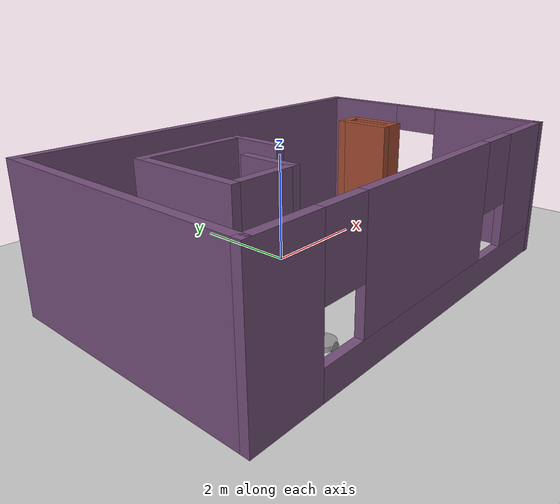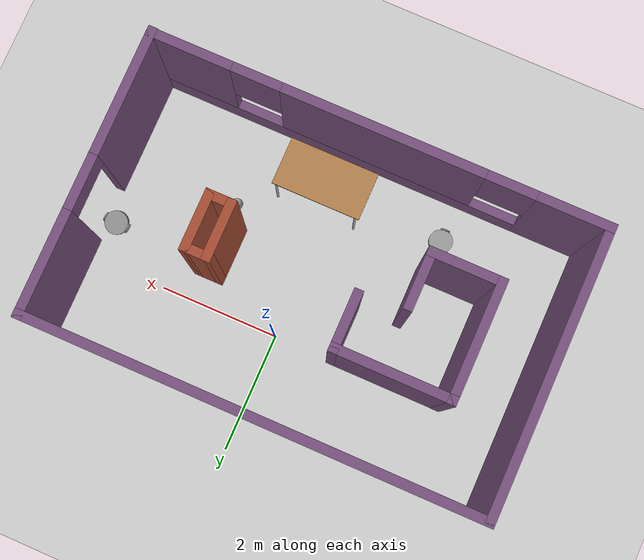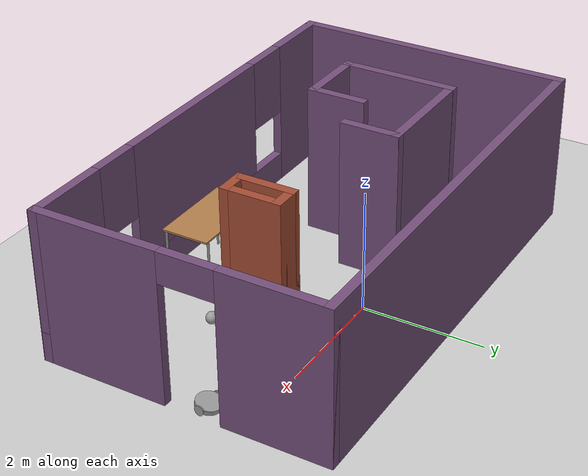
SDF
<sdf version="1.7">
 <world name="default">
  <plugin name="hello" filename="libhello.so"/>
  <light name="sun" type="directional">
   <pose>0 0 10 0 -0 0</pose>
   <diffuse>0.8 0.8 0.8 1</diffuse>
   <specular>0.2 0.2 0.2 1</specular>
   <attenuation>
    <range>1000</range>
    <constant>0.9</constant>
    <linear>0.01</linear>
    <quadratic>0.001</quadratic>
   </attenuation>
   <direction>-0.5 0.1 -0.9</direction>
   <spot><inner_angle>0</inner_angle><outer_angle>0</outer_angle><falloff>0</falloff></spot>
  </light>
  <model name="ground_plane">
   <static>1</static>
   <link name="link">
    <collision name="collision">
     <geometry><plane><normal>0 0 1</normal><size>100 100</size></plane></geometry>
     <surface>
      <contact><collide_bitmask>65535</collide_bitmask></contact>
      <friction><ode><mu>100</mu><mu2>50</mu2></ode></friction>
     </surface>
    </collision>
    <visual name="visual">
     <cast_shadows>0</cast_shadows>
     <geometry><plane><normal>0 0 1</normal><size>100 100</size></plane></geometry>
     <material>
      <script><uri>file://media/materials/scripts/gazebo.material</uri><name>Gazebo/Grey</name></script>
     </material>
    </visual>
   </link>
  </model>
  <gravity>0 0 -9.8</gravity>
  <magnetic_field>6e-06 2.3e-05 -4.2e-05</magnetic_field>
  <atmosphere type="adiabatic"/>
  <physics type="ode">
   <max_step_size>0.001</max_step_size>
   <real_time_factor>1</real_time_factor>
   <real_time_update_rate>1000</real_time_update_rate>
  </physics>
  <scene><ambient>0.4 0.4 0.4 1</ambient><background>0.7 0.7 0.7 1</background><shadows>1</shadows></scene>
  <spherical_coordinates>
   <surface_model>EARTH_WGS84</surface_model>
   <latitude_deg>0</latitude_deg>
   <longitude_deg>0</longitude_deg>
   <elevation>0</elevation>
   <heading_deg>0</heading_deg>
  </spherical_coordinates>
  <model name="robot">
   <link name="link_1">
    <inertial>
     <mass>1</mass>
     <inertia><ixx>0.145833</ixx><ixy>0</ixy><ixz>0</ixz><iyy>0.145833</iyy><iyz>0</iyz><izz>0.125</izz></inertia>
    </inertial>
    <pose>0 -0.000667 -0 0 -0 0</pose>
    <visual name="visual">
     <geometry><cylinder><radius>0.2</radius><length>0.08</length></cylinder></geometry>
     <material>
      <lighting>1</lighting>
      <script><uri>file://media/materials/scripts/gazebo.material</uri><name>Gazebo/Grey</name></script>
      <shader type="pixel"><normal_map>__default__</normal_map></shader>
      <ambient>0.3 0.3 0.3 1</ambient>
      <diffuse>0.7 0.7 0.7 1</diffuse>
      <specular>0.01 0.01 0.01 1</specular>
      <emissive>0 0 0 1</emissive>
     </material>
    </visual>
    <collision name="collision">
     <geometry><cylinder><radius>0.2</radius><length>0.08</length></cylinder></geometry>
     <surface>
      <friction>
       <ode><mu>1</mu><mu2>1</mu2><fdir1>0 0 0</fdir1><slip1>0</slip1><slip2>0</slip2></ode>
       <torsional>
        <coefficient>1</coefficient>
        <patch_radius>0</patch_radius>
        <surface_radius>0</surface_radius>
        <use_patch_radius>1</use_patch_radius>
        <ode><slip>0</slip></ode>
       </torsional>
      </friction>
      <bounce><restitution_coefficient>0</restitution_coefficient><threshold>1e+06</threshold></bounce>
      <contact>
       <collide_without_contact>0</collide_without_contact>
       <collide_without_contact_bitmask>1</collide_without_contact_bitmask>
       <collide_bitmask>1</collide_bitmask>
       <ode>
        <soft_cfm>0</soft_cfm>
        <soft_erp>0.2</soft_erp>
        <kp>1e+13</kp>
        <kd>1</kd>
        <max_vel>0.01</max_vel>
        <min_depth>0</min_depth>
       </ode>
       <bullet>
        <split_impulse>1</split_impulse>
        <split_impulse_penetration_threshold>-0.01</split_impulse_penetration_threshold>
        <soft_cfm>0</soft_cfm>
        <soft_erp>0.2</soft_erp>
        <kp>1e+13</kp>
        <kd>1</kd>
       </bullet>
      </contact>
     </surface>
    </collision>
   </link>
   <link name="link_2">
    <inertial>
     <mass>1</mass>
     <inertia><ixx>0.145833</ixx><ixy>0</ixy><ixz>0</ixz><iyy>0.145833</iyy><iyz>0</iyz><izz>0.125</izz></inertia>
    </inertial>
    <pose>0 -0.204667 -0 1.5708 -0 0</pose>
    <visual name="visual">
     <geometry><cylinder><radius>0.08</radius><length>0.02</length></cylinder></geometry>
     <material>
      <lighting>1</lighting>
      <script><uri>file://media/materials/scripts/gazebo.material</uri><name>Gazebo/Grey</name></script>
      <shader type="pixel"><normal_map>__default__</normal_map></shader>
      <ambient>0.3 0.3 0.3 1</ambient>
      <diffuse>0.7 0.7 0.7 1</diffuse>
      <specular>0.01 0.01 0.01 1</specular>
      <emissive>0 0 0 1</emissive>
     </material>
    </visual>
    <collision name="collision">
     <geometry><cylinder><radius>0.08</radius><length>0.02</length></cylinder></geometry>
     <surface>
      <friction>
       <ode><mu>1</mu><mu2>1</mu2><fdir1>0 0 0</fdir1><slip1>0</slip1><slip2>0</slip2></ode>
       <torsional>
        <coefficient>1</coefficient>
        <patch_radius>0</patch_radius>
        <surface_radius>0</surface_radius>
        <use_patch_radius>1</use_patch_radius>
        <ode><slip>0</slip></ode>
       </torsional>
      </friction>
      <bounce><restitution_coefficient>0</restitution_coefficient><threshold>1e+06</threshold></bounce>
      <contact>
       <collide_without_contact>0</collide_without_contact>
       <collide_without_contact_bitmask>1</collide_without_contact_bitmask>
       <collide_bitmask>1</collide_bitmask>
       <ode>
        <soft_cfm>0</soft_cfm>
        <soft_erp>0.2</soft_erp>
        <kp>1e+13</kp>
        <kd>1</kd>
        <max_vel>0.01</max_vel>
        <min_depth>0</min_depth>
       </ode>
       <bullet>
        <split_impulse>1</split_impulse>
        <split_impulse_penetration_threshold>-0.01</split_impulse_penetration_threshold>
        <soft_cfm>0</soft_cfm>
        <soft_erp>0.2</soft_erp>
        <kp>1e+13</kp>
        <kd>1</kd>
       </bullet>
      </contact>
     </surface>
    </collision>
   </link>
   <link name="link_2_clone">
    <inertial>
     <mass>1</mass>
     <inertia><ixx>0.145833</ixx><ixy>0</ixy><ixz>0</ixz><iyy>0.145833</iyy><iyz>0</iyz><izz>0.125</izz></inertia>
    </inertial>
    <pose>0 0.205333 -0 1.5708 -0 0</pose>
    <visual name="visual">
     <geometry><cylinder><radius>0.08</radius><length>0.02</length></cylinder></geometry>
     <material>
      <lighting>1</lighting>
      <script><uri>file://media/materials/scripts/gazebo.material</uri><name>Gazebo/Grey</name></script>
      <shader type="pixel"><normal_map>__default__</normal_map></shader>
      <ambient>0.3 0.3 0.3 1</ambient>
      <diffuse>0.7 0.7 0.7 1</diffuse>
      <specular>0.01 0.01 0.01 1</specular>
      <emissive>0 0 0 1</emissive>
     </material>
    </visual>
    <collision name="collision">
     <geometry><cylinder><radius>0.08</radius><length>0.02</length></cylinder></geometry>
     <surface>
      <friction>
       <ode><mu>1</mu><mu2>1</mu2><fdir1>0 0 0</fdir1><slip1>0</slip1><slip2>0</slip2></ode>
       <torsional>
        <coefficient>1</coefficient>
        <patch_radius>0</patch_radius>
        <surface_radius>0</surface_radius>
        <use_patch_radius>1</use_patch_radius>
        <ode><slip>0</slip></ode>
       </torsional>
      </friction>
      <bounce><restitution_coefficient>0</restitution_coefficient><threshold>1e+06</threshold></bounce>
      <contact>
       <collide_without_contact>0</collide_without_contact>
       <collide_without_contact_bitmask>1</collide_without_contact_bitmask>
       <collide_bitmask>1</collide_bitmask>
       <ode>
        <soft_cfm>0</soft_cfm>
        <soft_erp>0.2</soft_erp>
        <kp>1e+13</kp>
        <kd>1</kd>
        <max_vel>0.01</max_vel>
        <min_depth>0</min_depth>
       </ode>
       <bullet>
        <split_impulse>1</split_impulse>
        <split_impulse_penetration_threshold>-0.01</split_impulse_penetration_threshold>
        <soft_cfm>0</soft_cfm>
        <soft_erp>0.2</soft_erp>
        <kp>1e+13</kp>
        <kd>1</kd>
       </bullet>
      </contact>
     </surface>
    </collision>
   </link>
   <joint name="link_1_JOINT_0" type="revolute">
    <parent>link_1</parent>
    <child>link_2_clone</child>
    <axis>
     <xyz>0 0 -1</xyz>
     <limit>
      <lower>-1.79769e+308</lower>
      <upper>1.79769e+308</upper>
      <effort>-1</effort>
      <velocity>-1</velocity>
     </limit>
     <dynamics>
      <spring_reference>0</spring_reference>
      <spring_stiffness>0</spring_stiffness>
      <damping>0</damping>
      <friction>0</friction>
     </dynamics>
    </axis>
    <physics>
     <ode><limit><cfm>0</cfm><erp>0.2</erp></limit><suspension><cfm>0</cfm><erp>0.2</erp></suspension></ode>
    </physics>
   </joint>
   <joint name="link_1_JOINT_8" type="revolute">
    <parent>link_1</parent>
    <child>link_2</child>
    <axis>
     <xyz>0 0 1</xyz>
     <limit>
      <lower>-1.79769e+308</lower>
      <upper>1.79769e+308</upper>
      <effort>-1</effort>
      <velocity>-1</velocity>
     </limit>
     <dynamics>
      <spring_reference>0</spring_reference>
      <spring_stiffness>0</spring_stiffness>
      <damping>0</damping>
     </dynamics>
    </axis>
    <physics>
     <ode><limit><cfm>0</cfm><erp>0.2</erp></limit><suspension><cfm>0</cfm><erp>0.2</erp></suspension></ode>
    </physics>
   </joint>
   <static>0</static>
   <pose>3.15632 -0.680482 0.08 0 0.205662 1.46786</pose>
  </model>
  <model name="mybuilding">
   <pose>-0.321261 -0.38446 0 0 -0 0</pose>
   <link name="Wall_1">
    <pose>-0 -2.85761 0 0 -0 0</pose>
    <visual name="Wall_1_Visual_0">
     <pose>-3.133 0 1.25 0 -0 0</pose>
     <geometry><box><size>1.23401 0.15 2.5</size></box></geometry>
     <material>
      <script><uri>file://media/materials/scripts/gazebo.material</uri><name>Gazebo/Grey</name></script>
      <ambient>0.458824 0.313726 0.482353 1</ambient>
     </material>
     <meta><layer>0</layer></meta>
    </visual>
    <collision name="Wall_1_Collision_0">
     <geometry><box><size>1.23401 0.15 2.5</size></box></geometry>
     <pose>-3.133 0 1.25 0 -0 0</pose>
    </collision>
    <visual name="Wall_1_Visual_1">
     <pose>0.617005 0 0.25 0 -0 0</pose>
     <geometry><box><size>6.26599 0.15 0.5</size></box></geometry>
     <material>
      <script><uri>file://media/materials/scripts/gazebo.material</uri><name>Gazebo/Grey</name></script>
      <ambient>0.458824 0.313726 0.482353 1</ambient>
     </material>
     <meta><layer>0</layer></meta>
    </visual>
    <collision name="Wall_1_Collision_1">
     <geometry><box><size>6.26599 0.15 0.5</size></box></geometry>
     <pose>0.617005 0 0.25 0 -0 0</pose>
    </collision>
    <visual name="Wall_1_Visual_2">
     <pose>-0.077566 0 1.5 0 -0 0</pose>
     <geometry><box><size>3.27685 0.15 2</size></box></geometry>
     <material>
      <script><uri>file://media/materials/scripts/gazebo.material</uri><name>Gazebo/Grey</name></script>
      <ambient>0.458824 0.313726 0.482353 1</ambient>
     </material>
     <meta><layer>0</layer></meta>
    </visual>
    <collision name="Wall_1_Collision_2">
     <geometry><box><size>3.27685 0.15 2</size></box></geometry>
     <pose>-0.077566 0 1.5 0 -0 0</pose>
    </collision>
    <visual name="Wall_1_Visual_3">
     <pose>3.05543 0 1.5 0 -0 0</pose>
     <geometry><box><size>1.38914 0.15 2</size></box></geometry>
     <material>
      <script><uri>file://media/materials/scripts/gazebo.material</uri><name>Gazebo/Grey</name></script>
      <ambient>0.458824 0.313726 0.482353 1</ambient>
     </material>
     <meta><layer>0</layer></meta>
    </visual>
    <collision name="Wall_1_Collision_3">
     <geometry><box><size>1.38914 0.15 2</size></box></geometry>
     <pose>3.05543 0 1.5 0 -0 0</pose>
    </collision>
    <visual name="Wall_1_Visual_4">
     <pose>-2.11599 0 1.9 0 -0 0</pose>
     <geometry><box><size>0.8 0.15 1.2</size></box></geometry>
     <material>
      <script><uri>file://media/materials/scripts/gazebo.material</uri><name>Gazebo/Grey</name></script>
      <ambient>0.458824 0.313726 0.482353 1</ambient>
     </material>
     <meta><layer>0</layer></meta>
    </visual>
    <collision name="Wall_1_Collision_4">
     <geometry><box><size>0.8 0.15 1.2</size></box></geometry>
     <pose>-2.11599 0 1.9 0 -0 0</pose>
    </collision>
    <visual name="Wall_1_Visual_5">
     <pose>1.96086 0 1.9 0 -0 0</pose>
     <geometry><box><size>0.8 0.15 1.2</size></box></geometry>
     <material>
      <script><uri>file://media/materials/scripts/gazebo.material</uri><name>Gazebo/Grey</name></script>
      <ambient>0.458824 0.313726 0.482353 1</ambient>
     </material>
     <meta><layer>0</layer></meta>
    </visual>
    <collision name="Wall_1_Collision_5">
     <geometry><box><size>0.8 0.15 1.2</size></box></geometry>
     <pose>1.96086 0 1.9 0 -0 0</pose>
    </collision>
   </link>
   <link name="Wall_25">
    <collision name="Wall_25_Collision">
     <geometry><box><size>1 0.15 2.5</size></box></geometry>
     <pose>0 0 1.25 0 -0 0</pose>
    </collision>
    <visual name="Wall_25_Visual">
     <pose>0 0 1.25 0 -0 0</pose>
     <geometry><box><size>1 0.15 2.5</size></box></geometry>
     <material>
      <script><uri>file://media/materials/scripts/gazebo.material</uri><name>Gazebo/Bricks</name></script>
      <ambient>1 1 1 1</ambient>
     </material>
     <meta><layer>0</layer></meta>
    </visual>
    <pose>1.5329 -0.543166 0 0 -0 -1.5708</pose>
   </link>
   <link name="Wall_48">
    <collision name="Wall_48_Collision">
     <geometry><box><size>2 0.15 2.5</size></box></geometry>
     <pose>0 0 1.25 0 -0 0</pose>
    </collision>
    <visual name="Wall_48_Visual">
     <pose>0 0 1.25 0 -0 0</pose>
     <geometry><box><size>2 0.15 2.5</size></box></geometry>
     <material>
      <script><uri>file://media/materials/scripts/gazebo.material</uri><name>Gazebo/Grey</name></script>
      <ambient>0.458824 0.313726 0.482353 1</ambient>
     </material>
     <meta><layer>0</layer></meta>
    </visual>
    <pose>-2.53106 -0.558923 0 0 -0 -1.5708</pose>
   </link>
   <link name="Wall_54">
    <collision name="Wall_54_Collision">
     <geometry><box><size>1 0.15 2.5</size></box></geometry>
     <pose>0 0 1.25 0 -0 0</pose>
    </collision>
    <visual name="Wall_54_Visual">
     <pose>0 0 1.25 0 -0 0</pose>
     <geometry><box><size>1 0.15 2.5</size></box></geometry>
     <material>
      <script><uri>file://media/materials/scripts/gazebo.material</uri><name>Gazebo/Grey</name></script>
      <ambient>0.458824 0.313726 0.482353 1</ambient>
     </material>
     <meta><layer>0</layer></meta>
    </visual>
    <pose>-0.680946 -0.062487 0 0 -0 1.5708</pose>
   </link>
   <link name="Wall_55">
    <collision name="Wall_55_Collision">
     <geometry><box><size>2 0.15 2.5</size></box></geometry>
     <pose>0 0 1.25 0 -0 0</pose>
    </collision>
    <visual name="Wall_55_Visual">
     <pose>0 0 1.25 0 -0 0</pose>
     <geometry><box><size>2 0.15 2.5</size></box></geometry>
     <material>
      <script><uri>file://media/materials/scripts/gazebo.material</uri><name>Gazebo/Grey</name></script>
      <ambient>0.458824 0.313726 0.482353 1</ambient>
     </material>
     <meta><layer>0</layer></meta>
    </visual>
    <pose>-1.60595 0.362513 0 0 -0 3.14159</pose>
   </link>
   <link name="Wall_57">
    <collision name="Wall_57_Collision">
     <geometry><box><size>0.5 0.15 2.5</size></box></geometry>
     <pose>0 0 1.25 0 -0 0</pose>
    </collision>
    <visual name="Wall_57_Visual">
     <pose>0 0 1.25 0 -0 0</pose>
     <geometry><box><size>0.5 0.15 2.5</size></box></geometry>
     <material>
      <script><uri>file://media/materials/scripts/gazebo.material</uri><name>Gazebo/Bricks</name></script>
      <ambient>1 1 1 1</ambient>
     </material>
     <meta><layer>0</layer></meta>
    </visual>
    <pose>1.7079 -0.118166 0 0 -0 0</pose>
   </link>
   <link name="Wall_58">
    <collision name="Wall_58_Collision">
     <geometry><box><size>1 0.15 2.5</size></box></geometry>
     <pose>0 0 1.25 0 -0 0</pose>
    </collision>
    <visual name="Wall_58_Visual">
     <pose>0 0 1.25 0 -0 0</pose>
     <geometry><box><size>1 0.15 2.5</size></box></geometry>
     <material>
      <script><uri>file://media/materials/scripts/gazebo.material</uri><name>Gazebo/Bricks</name></script>
      <ambient>1 1 1 1</ambient>
     </material>
     <meta><layer>0</layer></meta>
    </visual>
    <pose>1.8829 -0.543166 0 0 -0 -1.5708</pose>
   </link>
   <link name="Wall_59">
    <collision name="Wall_59_Collision">
     <geometry><box><size>0.5 0.15 2.5</size></box></geometry>
     <pose>0 0 1.25 0 -0 0</pose>
    </collision>
    <visual name="Wall_59_Visual">
     <pose>0 0 1.25 0 -0 0</pose>
     <geometry><box><size>0.5 0.15 2.5</size></box></geometry>
     <material>
      <script><uri>file://media/materials/scripts/gazebo.material</uri><name>Gazebo/Bricks</name></script>
      <ambient>0.458824 0.313726 0.482353 1</ambient>
     </material>
     <meta><layer>0</layer></meta>
    </visual>
    <pose>1.7079 -0.968166 0 0 -0 3.14159</pose>
   </link>
   <link name="Wall_61">
    <collision name="Wall_61_Collision">
     <geometry><box><size>4.73022 0.15 2.5</size></box></geometry>
     <pose>0 0 1.25 0 -0 0</pose>
    </collision>
    <visual name="Wall_61_Visual">
     <pose>0 0 1.25 0 -0 0</pose>
     <geometry><box><size>4.73022 0.15 2.5</size></box></geometry>
     <material>
      <script><uri>file://media/materials/scripts/gazebo.material</uri><name>Gazebo/Grey</name></script>
      <ambient>0.458824 0.313726 0.482353 1</ambient>
     </material>
     <meta><layer>0</layer></meta>
    </visual>
    <pose>-3.675 -0.557612 0 0 -0 1.5708</pose>
   </link>
   <link name="Wall_62">
    <collision name="Wall_62_Collision">
     <geometry><box><size>7.5 0.15 2.5</size></box></geometry>
     <pose>0 0 1.25 0 -0 0</pose>
    </collision>
    <visual name="Wall_62_Visual">
     <pose>0 0 1.25 0 -0 0</pose>
     <geometry><box><size>7.5 0.15 2.5</size></box></geometry>
     <material>
      <script><uri>file://media/materials/scripts/gazebo.material</uri><name>Gazebo/Grey</name></script>
      <ambient>0.458824 0.313726 0.482353 1</ambient>
     </material>
     <meta><layer>0</layer></meta>
    </visual>
    <pose>-0 1.7325 0 0 -0 0</pose>
   </link>
   <link name="Wall_63">
    <pose>3.675 -0.5675 0 0 -0 -1.5708</pose>
    <visual name="Wall_63_Visual_0">
     <pose>-1.5023 0 1.25 0 -0 0</pose>
     <geometry><box><size>1.7454 0.15 2.5</size></box></geometry>
     <material>
      <script><uri>file://media/materials/scripts/gazebo.material</uri><name>Gazebo/Grey</name></script>
      <ambient>0.458824 0.313726 0.482353 1</ambient>
     </material>
     <meta><layer>0</layer></meta>
    </visual>
    <collision name="Wall_63_Collision_0">
     <geometry><box><size>1.7454 0.15 2.5</size></box></geometry>
     <pose>-1.5023 0 1.25 0 -0 0</pose>
    </collision>
    <visual name="Wall_63_Visual_1">
     <pose>1.3227 0 1.25 0 -0 0</pose>
     <geometry><box><size>2.1046 0.15 2.5</size></box></geometry>
     <material>
      <script><uri>file://media/materials/scripts/gazebo.material</uri><name>Gazebo/Grey</name></script>
      <ambient>0.458824 0.313726 0.482353 1</ambient>
     </material>
     <meta><layer>0</layer></meta>
    </visual>
    <collision name="Wall_63_Collision_1">
     <geometry><box><size>2.1046 0.15 2.5</size></box></geometry>
     <pose>1.3227 0 1.25 0 -0 0</pose>
    </collision>
    <visual name="Wall_63_Visual_2">
     <pose>-0.179603 0 2.25 0 -0 0</pose>
     <geometry><box><size>0.9 0.15 0.5</size></box></geometry>
     <material>
      <script><uri>file://media/materials/scripts/gazebo.material</uri><name>Gazebo/Grey</name></script>
      <ambient>0.458824 0.313726 0.482353 1</ambient>
     </material>
     <meta><layer>0</layer></meta>
    </visual>
    <collision name="Wall_63_Collision_2">
     <geometry><box><size>0.9 0.15 0.5</size></box></geometry>
     <pose>-0.179603 0 2.25 0 -0 0</pose>
    </collision>
   </link>
   <link name="Wall_71">
    <collision name="Wall_71_Collision">
     <geometry><box><size>1.25 0.15 2.5</size></box></geometry>
     <pose>0 0 1.25 0 -0 0</pose>
    </collision>
    <visual name="Wall_71_Visual">
     <pose>0 0 1.25 0 -0 0</pose>
     <geometry><box><size>1.25 0.15 2.5</size></box></geometry>
     <material>
      <script><uri>file://media/materials/scripts/gazebo.material</uri><name>Gazebo/Grey</name></script>
      <ambient>0.458824 0.313726 0.482353 1</ambient>
     </material>
     <meta><layer>0</layer></meta>
    </visual>
    <pose>-1.98106 -1.48392 0 0 -0 0</pose>
   </link>
   <link name="Wall_72">
    <collision name="Wall_72_Collision">
     <geometry><box><size>1 0.15 2.5</size></box></geometry>
     <pose>0 0 1.25 0 -0 0</pose>
    </collision>
    <visual name="Wall_72_Visual">
     <pose>0 0 1.25 0 -0 0</pose>
     <geometry><box><size>1 0.15 2.5</size></box></geometry>
     <material>
      <script><uri>file://media/materials/scripts/gazebo.material</uri><name>Gazebo/Grey</name></script>
      <ambient>0.458824 0.313726 0.482353 1</ambient>
     </material>
     <meta><layer>0</layer></meta>
    </visual>
    <pose>-1.43106 -1.05892 0 0 -0 1.5708</pose>
   </link>
   <static>1</static>
  </model>
  <model name="robot_0">
   <link name="link_1">
    <inertial>
     <mass>1</mass>
     <inertia><ixx>0.145833</ixx><ixy>0</ixy><ixz>0</ixz><iyy>0.145833</iyy><iyz>0</iyz><izz>0.125</izz></inertia>
    </inertial>
    <pose>0 -0.000667 -0 0 -0 0</pose>
    <visual name="visual">
     <geometry><cylinder><radius>0.2</radius><length>0.08</length></cylinder></geometry>
     <material>
      <lighting>1</lighting>
      <script><uri>file://media/materials/scripts/gazebo.material</uri><name>Gazebo/Grey</name></script>
      <shader type="pixel"><normal_map>__default__</normal_map></shader>
      <ambient>0.3 0.3 0.3 1</ambient>
      <diffuse>0.7 0.7 0.7 1</diffuse>
      <specular>0.01 0.01 0.01 1</specular>
      <emissive>0 0 0 1</emissive>
     </material>
    </visual>
    <collision name="collision">
     <geometry><cylinder><radius>0.2</radius><length>0.08</length></cylinder></geometry>
     <surface>
      <friction>
       <ode><mu>1</mu><mu2>1</mu2><fdir1>0 0 0</fdir1><slip1>0</slip1><slip2>0</slip2></ode>
       <torsional>
        <coefficient>1</coefficient>
        <patch_radius>0</patch_radius>
        <surface_radius>0</surface_radius>
        <use_patch_radius>1</use_patch_radius>
        <ode><slip>0</slip></ode>
       </torsional>
      </friction>
      <bounce><restitution_coefficient>0</restitution_coefficient><threshold>1e+06</threshold></bounce>
      <contact>
       <collide_without_contact>0</collide_without_contact>
       <collide_without_contact_bitmask>1</collide_without_contact_bitmask>
       <collide_bitmask>1</collide_bitmask>
       <ode>
        <soft_cfm>0</soft_cfm>
        <soft_erp>0.2</soft_erp>
        <kp>1e+13</kp>
        <kd>1</kd>
        <max_vel>0.01</max_vel>
        <min_depth>0</min_depth>
       </ode>
       <bullet>
        <split_impulse>1</split_impulse>
        <split_impulse_penetration_threshold>-0.01</split_impulse_penetration_threshold>
        <soft_cfm>0</soft_cfm>
        <soft_erp>0.2</soft_erp>
        <kp>1e+13</kp>
        <kd>1</kd>
       </bullet>
      </contact>
     </surface>
    </collision>
   </link>
   <link name="link_2">
    <inertial>
     <mass>1</mass>
     <inertia><ixx>0.145833</ixx><ixy>0</ixy><ixz>0</ixz><iyy>0.145833</iyy><iyz>0</iyz><izz>0.125</izz></inertia>
    </inertial>
    <pose>0 -0.204667 -0 1.5708 -0 0</pose>
    <visual name="visual">
     <geometry><cylinder><radius>0.08</radius><length>0.02</length></cylinder></geometry>
     <material>
      <lighting>1</lighting>
      <script><uri>file://media/materials/scripts/gazebo.material</uri><name>Gazebo/Grey</name></script>
      <shader type="pixel"><normal_map>__default__</normal_map></shader>
      <ambient>0.3 0.3 0.3 1</ambient>
      <diffuse>0.7 0.7 0.7 1</diffuse>
      <specular>0.01 0.01 0.01 1</specular>
      <emissive>0 0 0 1</emissive>
     </material>
    </visual>
    <collision name="collision">
     <geometry><cylinder><radius>0.08</radius><length>0.02</length></cylinder></geometry>
     <surface>
      <friction>
       <ode><mu>1</mu><mu2>1</mu2><fdir1>0 0 0</fdir1><slip1>0</slip1><slip2>0</slip2></ode>
       <torsional>
        <coefficient>1</coefficient>
        <patch_radius>0</patch_radius>
        <surface_radius>0</surface_radius>
        <use_patch_radius>1</use_patch_radius>
        <ode><slip>0</slip></ode>
       </torsional>
      </friction>
      <bounce><restitution_coefficient>0</restitution_coefficient><threshold>1e+06</threshold></bounce>
      <contact>
       <collide_without_contact>0</collide_without_contact>
       <collide_without_contact_bitmask>1</collide_without_contact_bitmask>
       <collide_bitmask>1</collide_bitmask>
       <ode>
        <soft_cfm>0</soft_cfm>
        <soft_erp>0.2</soft_erp>
        <kp>1e+13</kp>
        <kd>1</kd>
        <max_vel>0.01</max_vel>
        <min_depth>0</min_depth>
       </ode>
       <bullet>
        <split_impulse>1</split_impulse>
        <split_impulse_penetration_threshold>-0.01</split_impulse_penetration_threshold>
        <soft_cfm>0</soft_cfm>
        <soft_erp>0.2</soft_erp>
        <kp>1e+13</kp>
        <kd>1</kd>
       </bullet>
      </contact>
     </surface>
    </collision>
   </link>
   <link name="link_2_clone">
    <inertial>
     <mass>1</mass>
     <inertia><ixx>0.145833</ixx><ixy>0</ixy><ixz>0</ixz><iyy>0.145833</iyy><iyz>0</iyz><izz>0.125</izz></inertia>
    </inertial>
    <pose>0 0.205333 -0 1.5708 -0 0</pose>
    <visual name="visual">
     <geometry><cylinder><radius>0.08</radius><length>0.02</length></cylinder></geometry>
     <material>
      <lighting>1</lighting>
      <script><uri>file://media/materials/scripts/gazebo.material</uri><name>Gazebo/Grey</name></script>
      <shader type="pixel"><normal_map>__default__</normal_map></shader>
      <ambient>0.3 0.3 0.3 1</ambient>
      <diffuse>0.7 0.7 0.7 1</diffuse>
      <specular>0.01 0.01 0.01 1</specular>
      <emissive>0 0 0 1</emissive>
     </material>
    </visual>
    <collision name="collision">
     <geometry><cylinder><radius>0.08</radius><length>0.02</length></cylinder></geometry>
     <surface>
      <friction>
       <ode><mu>1</mu><mu2>1</mu2><fdir1>0 0 0</fdir1><slip1>0</slip1><slip2>0</slip2></ode>
       <torsional>
        <coefficient>1</coefficient>
        <patch_radius>0</patch_radius>
        <surface_radius>0</surface_radius>
        <use_patch_radius>1</use_patch_radius>
        <ode><slip>0</slip></ode>
       </torsional>
      </friction>
      <bounce><restitution_coefficient>0</restitution_coefficient><threshold>1e+06</threshold></bounce>
      <contact>
       <collide_without_contact>0</collide_without_contact>
       <collide_without_contact_bitmask>1</collide_without_contact_bitmask>
       <collide_bitmask>1</collide_bitmask>
       <ode>
        <soft_cfm>0</soft_cfm>
        <soft_erp>0.2</soft_erp>
        <kp>1e+13</kp>
        <kd>1</kd>
        <max_vel>0.01</max_vel>
        <min_depth>0</min_depth>
       </ode>
       <bullet>
        <split_impulse>1</split_impulse>
        <split_impulse_penetration_threshold>-0.01</split_impulse_penetration_threshold>
        <soft_cfm>0</soft_cfm>
        <soft_erp>0.2</soft_erp>
        <kp>1e+13</kp>
        <kd>1</kd>
       </bullet>
      </contact>
     </surface>
    </collision>
   </link>
   <joint name="link_1_JOINT_0" type="revolute">
    <parent>link_1</parent>
    <child>link_2_clone</child>
    <axis>
     <xyz>0 0 -1</xyz>
     <limit>
      <lower>-1.79769e+308</lower>
      <upper>1.79769e+308</upper>
      <effort>-1</effort>
      <velocity>-1</velocity>
     </limit>
     <dynamics>
      <spring_reference>0</spring_reference>
      <spring_stiffness>0</spring_stiffness>
      <damping>0</damping>
      <friction>0</friction>
     </dynamics>
    </axis>
    <physics>
     <ode><limit><cfm>0</cfm><erp>0.2</erp></limit><suspension><cfm>0</cfm><erp>0.2</erp></suspension></ode>
    </physics>
   </joint>
   <joint name="link_1_JOINT_8" type="revolute">
    <parent>link_1</parent>
    <child>link_2</child>
    <axis>
     <xyz>0 0 1</xyz>
     <limit>
      <lower>-1.79769e+308</lower>
      <upper>1.79769e+308</upper>
      <effort>-1</effort>
      <velocity>-1</velocity>
     </limit>
     <dynamics>
      <spring_reference>0</spring_reference>
      <spring_stiffness>0</spring_stiffness>
      <damping>0</damping>
     </dynamics>
    </axis>
    <physics>
     <ode><limit><cfm>0</cfm><erp>0.2</erp></limit><suspension><cfm>0</cfm><erp>0.2</erp></suspension></ode>
    </physics>
   </joint>
   <static>0</static>
   <pose>-1.86972 -2.52301 0.079999 3e-06 0.000135 0</pose>
  </model>
  <model name="table">
   <static>1</static>
   <link name="link">
    <collision name="surface">
     <pose>0 0 1 0 -0 0</pose>
     <geometry><box><size>1.5 0.8 0.03</size></box></geometry>
     <surface><friction><ode><mu>0.6</mu><mu2>0.6</mu2></ode></friction></surface>
    </collision>
    <visual name="visual1">
     <pose>0 0 1 0 -0 0</pose>
     <geometry><box><size>1.5 0.8 0.03</size></box></geometry>
     <material>
      <script><uri>file://media/materials/scripts/gazebo.material</uri><name>Gazebo/Wood</name></script>
     </material>
    </visual>
    <collision name="front_left_leg">
     <pose>0.68 0.38 0.5 0 -0 0</pose>
     <geometry><cylinder><radius>0.02</radius><length>1</length></cylinder></geometry>
    </collision>
    <visual name="front_left_leg">
     <pose>0.68 0.38 0.5 0 -0 0</pose>
     <geometry><cylinder><radius>0.02</radius><length>1</length></cylinder></geometry>
     <material>
      <script><uri>file://media/materials/scripts/gazebo.material</uri><name>Gazebo/Grey</name></script>
     </material>
    </visual>
    <collision name="front_right_leg">
     <pose>0.68 -0.38 0.5 0 -0 0</pose>
     <geometry><cylinder><radius>0.02</radius><length>1</length></cylinder></geometry>
    </collision>
    <visual name="front_right_leg">
     <pose>0.68 -0.38 0.5 0 -0 0</pose>
     <geometry><cylinder><radius>0.02</radius><length>1</length></cylinder></geometry>
     <material>
      <script><uri>file://media/materials/scripts/gazebo.material</uri><name>Gazebo/Grey</name></script>
     </material>
    </visual>
    <collision name="back_right_leg">
     <pose>-0.68 -0.38 0.5 0 -0 0</pose>
     <geometry><cylinder><radius>0.02</radius><length>1</length></cylinder></geometry>
    </collision>
    <visual name="back_right_leg">
     <pose>-0.68 -0.38 0.5 0 -0 0</pose>
     <geometry><cylinder><radius>0.02</radius><length>1</length></cylinder></geometry>
     <material>
      <script><uri>file://media/materials/scripts/gazebo.material</uri><name>Gazebo/Grey</name></script>
     </material>
    </visual>
    <collision name="back_left_leg">
     <pose>-0.68 0.38 0.5 0 -0 0</pose>
     <geometry><cylinder><radius>0.02</radius><length>1</length></cylinder></geometry>
    </collision>
    <visual name="back_left_leg">
     <pose>-0.68 0.38 0.5 0 -0 0</pose>
     <geometry><cylinder><radius>0.02</radius><length>1</length></cylinder></geometry>
     <material>
      <script><uri>file://media/materials/scripts/gazebo.material</uri><name>Gazebo/Grey</name></script>
     </material>
    </visual>
   </link>
   <pose>0.222034 -2.54608 0 0 -0 0</pose>
  </model>
  <model name="my_ball">
   <link name="link_0">
    <inertial>
     <mass>1</mass>
     <inertia><ixx>0.1</ixx><ixy>0</ixy><ixz>0</ixz><iyy>0.1</iyy><iyz>0</iyz><izz>0.1</izz></inertia>
    </inertial>
    <visual name="visual">
     <geometry><sphere><radius>0.1</radius></sphere></geometry>
     <material>
      <lighting>1</lighting>
      <script><uri>file://media/materials/scripts/gazebo.material</uri><name>Gazebo/Grey</name></script>
      <shader type="pixel"><normal_map>__default__</normal_map></shader>
      <ambient>1 1 1 1</ambient>
      <diffuse>1 1 1 1</diffuse>
      <specular>1 1 0.8 1</specular>
      <emissive>1 1 1 1</emissive>
     </material>
    </visual>
    <collision name="collision">
     <geometry><sphere><radius>0.1</radius></sphere></geometry>
     <surface>
      <friction>
       <ode><mu>1</mu><mu2>1</mu2><fdir1>0 0 0</fdir1><slip1>0</slip1><slip2>0</slip2></ode>
       <torsional>
        <coefficient>1</coefficient>
        <patch_radius>0</patch_radius>
        <surface_radius>0</surface_radius>
        <use_patch_radius>1</use_patch_radius>
        <ode><slip>0</slip></ode>
       </torsional>
      </friction>
      <bounce><restitution_coefficient>0</restitution_coefficient><threshold>1e+06</threshold></bounce>
      <contact>
       <collide_without_contact>0</collide_without_contact>
       <collide_without_contact_bitmask>1</collide_without_contact_bitmask>
       <collide_bitmask>1</collide_bitmask>
       <ode>
        <soft_cfm>0</soft_cfm>
        <soft_erp>0.2</soft_erp>
        <kp>1e+13</kp>
        <kd>1</kd>
        <max_vel>0.01</max_vel>
        <min_depth>0</min_depth>
       </ode>
       <bullet>
        <split_impulse>1</split_impulse>
        <split_impulse_penetration_threshold>-0.01</split_impulse_penetration_threshold>
        <soft_cfm>0</soft_cfm>
        <soft_erp>0.2</soft_erp>
        <kp>1e+13</kp>
        <kd>1</kd>
       </bullet>
      </contact>
     </surface>
    </collision>
   </link>
   <static>0</static>
   <pose>1.46299 -1.75649 0.1 0 -0 0</pose>
  </model>
 </world>
</sdf>
